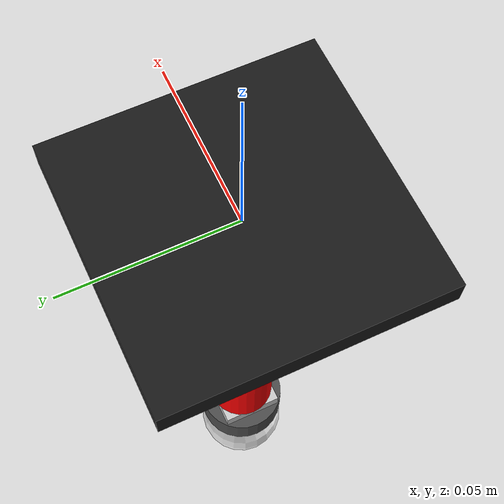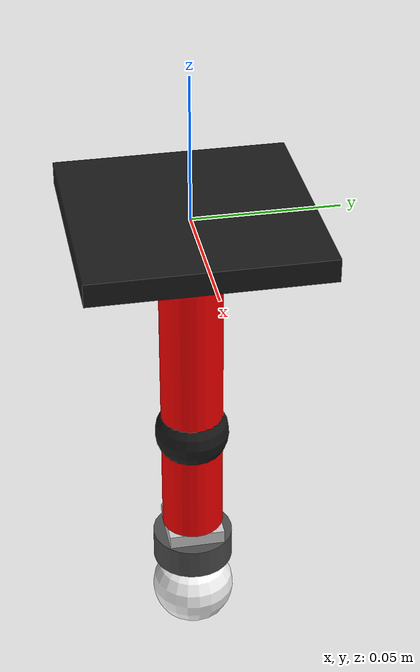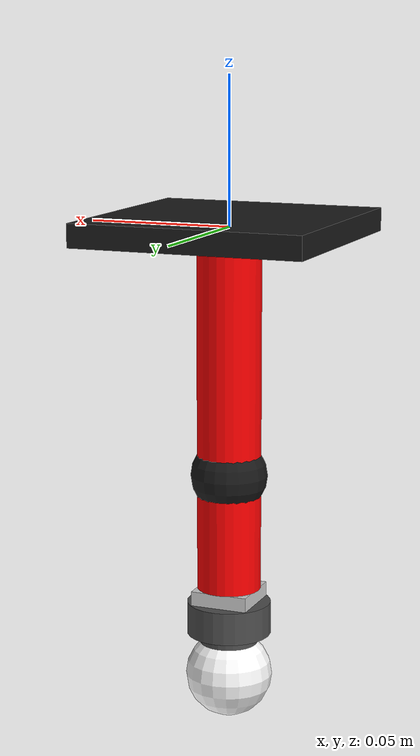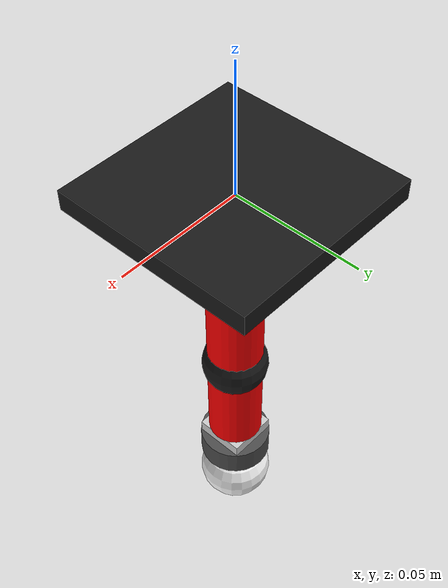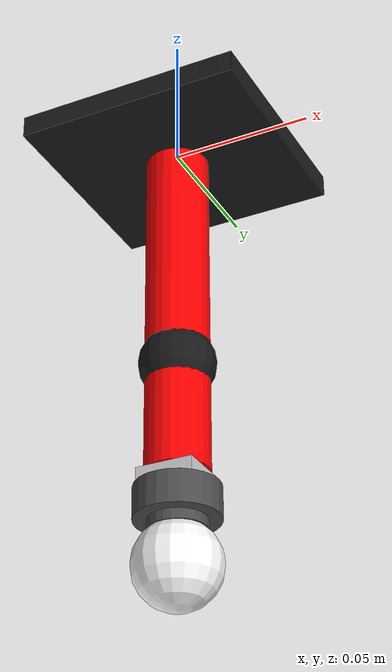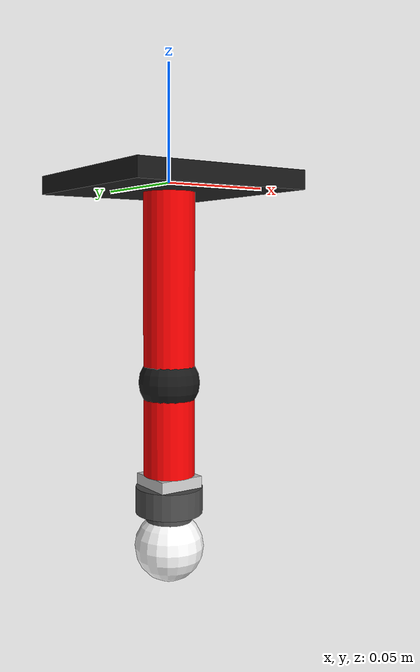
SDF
<?xml version="1.0" encoding="utf-8"?>
<!-- |    This document was autogenerated by xacro from planar_gripper.xacro           | -->
<!-- |    EDITING THIS FILE BY HAND IS NOT RECOMMENDED                                 | -->
<sdf version="1.6">
  <model name="planar_gripper">
    <link name="finger1_base">
      <visual name="base_visual">
        <pose>0 0 0 0 0 0</pose>
        <geometry>
          <box>
            <size>0.08 0.08 0.008</size>
          </box>
        </geometry>
        <material>
          <diffuse>0.1 0.1 0.1 1</diffuse>
        </material>
      </visual>
    </link>
    <link name="finger1_link1">
      <pose>0 0 0 0 0 0</pose>
      <inertial>
        <pose>0 0 -0.03811 0 0 0</pose>
        <mass>0.449</mass>
        <inertia>
          <ixx>1.517311719</ixx>
          <iyy>1.517885744</iyy>
          <izz>1.51776429</izz>
          <ixz>2.8883e-05</ixz>
          <ixy>0</ixy>
          <iyz>0</iyz>
        </inertia>
      </inertial>
      <visual name="link1_visual">
        <pose>0 0 -0.0425 0 0 0</pose>
        <geometry>
          <cylinder>
            <length>0.085</length>
            <radius>0.011</radius>
          </cylinder>
        </geometry>
        <material>
          <diffuse>1 0 0 1</diffuse>
        </material>
      </visual>
      <visual name="link1_joint_visual">
        <pose>0 0 -0.085 0 0 0</pose>
        <geometry>
          <sphere>
            <radius>0.0132</radius>
          </sphere>
        </geometry>
        <material>
          <diffuse>.1 .1 .1 1</diffuse>
        </material>
      </visual>
    </link>
    <joint name="finger1_BaseJoint" type="revolute">
      <child>finger1_link1</child>
      <parent>finger1_base</parent>
      <axis>
        <xyz>1 0 0</xyz>
        <limit>
          <!-- Drake parses a zero effort joint as an un-actuated joint. -->
          <effort>75</effort>
          <lower>-1.570796</lower>
          <upper>1.570796</upper>
        </limit>
        <dynamics>
          <damping>0</damping>
        </dynamics>
        <use_parent_model_frame>1</use_parent_model_frame>
      </axis>
    </joint>
    <link name="finger1_link2">
      <!-- The origin of the link2 frame is located at the MidJoint. -->
      <pose>0 0 -0.085 0 0 0</pose>
      <inertial>
        <pose>0 0 -0.02966 0 0 0</pose>
        <mass>0.104</mass>
        <inertia>
          <ixx>1.503163102</ixx>
          <iyy>1.503167854</iyy>
          <izz>1.503097413</izz>
          <ixz>6.523e-06</ixz>
          <ixy>0</ixy>
          <iyz>0</iyz>
        </inertia>
      </inertial>
      <visual name="link2_visual">
        <pose>0 0 -0.02 0 0 0</pose>
        <geometry>
          <cylinder>
            <length>0.04</length>
            <radius>0.011</radius>
          </cylinder>
        </geometry>
        <material>
          <diffuse>1 0 0 1</diffuse>
        </material>
      </visual>
      <!--The link 2 collision element extends up to (but not including) the
            sphere fingertip-->
      <collision name="link2_collision">
        <pose>0 0 -0.0299 0 0 0</pose>
        <geometry>
          <cylinder>
            <length>0.0598</length>
            <radius>0.011</radius>
          </cylinder>
        </geometry>
        <material>
          <diffuse>1 0 1 1</diffuse>
        </material>
      </collision>
      <visual name="sensor_visual">
        <pose>0 0 -0.0425 0 0 0</pose>
        <geometry>
          <box>
            <size>0.02 0.02 0.005</size>
          </box>
        </geometry>
        <material>
          <diffuse>.8 .8 .8 1</diffuse>
        </material>
      </visual>
    </link>
    <joint name="finger1_MidJoint" type="revolute">
      <parent>finger1_link1</parent>
      <child>finger1_link2</child>
      <!-- Pose X_CJ of the joint frame J in the frame C of the child link -->
      <pose>0 0 0 0 0 0</pose>
      <axis>
        <xyz>1 0 0</xyz>
        <limit>
          <effort>75</effort>
          <lower>-1.570796</lower>
          <upper>1.570796</upper>
        </limit>
        <dynamics>
          <damping>0</damping>
        </dynamics>
        <use_parent_model_frame>1</use_parent_model_frame>
      </axis>
    </joint>
    <link name="finger1_tip_link">
      <pose>0 0 -0.13 0 0 0</pose>
      <inertial>
        <pose>0 0 -0.0074 0 0 0</pose>
        <mass>1e-7</mass>
        <inertia>
          <ixx>1e-7</ixx>
          <iyy>1e-7</iyy>
          <izz>1e-7</izz>
          <ixy>0</ixy>
          <ixz>0</ixz>
          <iyz>0</iyz>
        </inertia>
      </inertial>
      <visual name="tip_adapter_visual">
        <pose>0 0 -0.00565 0 0 0</pose>
        <geometry>
          <cylinder>
            <length>0.0113</length>
            <radius>0.0145</radius>
          </cylinder>
        </geometry>
        <material>
          <diffuse>.3 .3 .3 1</diffuse>
        </material>
      </visual>
      <visual name="tip_cylinder_visual">
        <pose>0 0 -0.01305 0 0 0</pose>
        <geometry>
          <cylinder>
            <length>0.0035</length>
            <radius>0.01</radius>
          </cylinder>
        </geometry>
        <material>
          <diffuse>.3 .3 .3 1</diffuse>
        </material>
      </visual>
      <visual name="tip_sphere_visual">
        <pose>0 0 -0.0263 0 0 0</pose>
        <geometry>
          <sphere>
            <radius>0.015</radius>
          </sphere>
        </geometry>
        <material>
          <diffuse>1 1 1 1</diffuse>
        </material>
      </visual>
      <collision name="tip_sphere_collision">
        <pose>0 0 -0.0263 0 0 0</pose>
        <geometry>
          <sphere>
            <radius>0.015</radius>
          </sphere>
        </geometry>
        <material>
          <diffuse>1 1 1 1</diffuse>
        </material>
      </collision>
    </link>
    <joint name="finger1_sensor_weldjoint" type="fixed">
      <parent>finger1_link2</parent>
      <child>finger1_tip_link</child>
      <pose>0 0 0 0 0 0</pose>
    </joint>
  </model>
</sdf>
